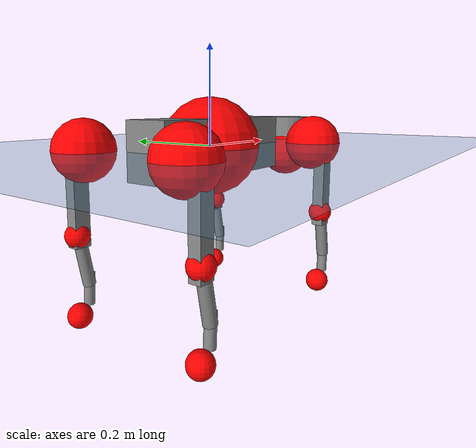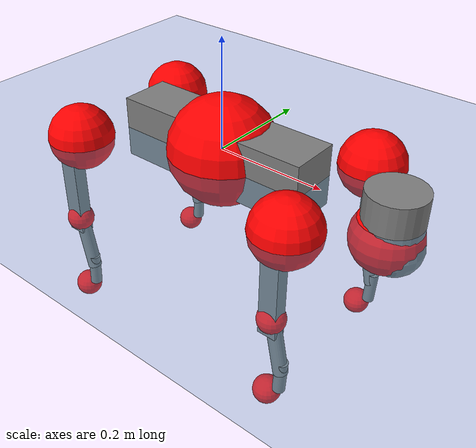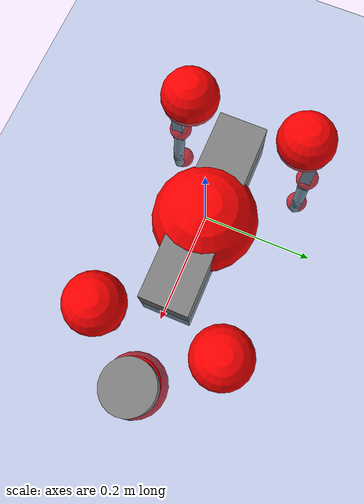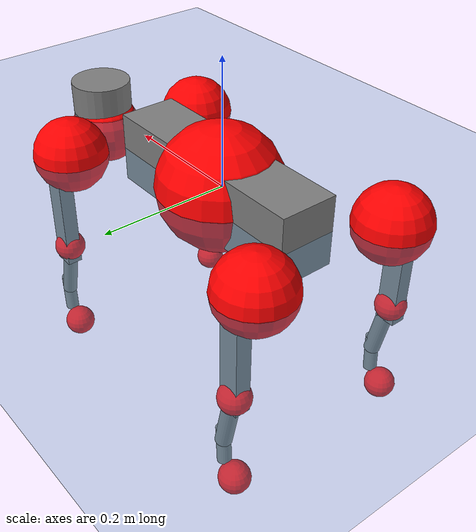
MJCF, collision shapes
<mujoco model="go2">
  <compiler angle="radian" assetdir="assets" balanceinertia="true" inertiafromgeom="false"/>

  <option timestep="0.005" density="1.2" viscosity="2e-05"/>

  <size nkey="1"/>

  <visual>
    <quality shadowsize="8192"/>
    <map shadowclip="0.5"/>
  </visual>

  <default>
    <default class="/">
      <geom contype="0" conaffinity="0" group="1" solref="-1000 -80"/>
      <site size="0.01 0.005 0.005" group="5"/>
      <general forcelimited="true" biastype="affine" gainprm="20" biasprm="0 -20 -0.5"/>
      <default class="go2">
        <joint armature="0.01" damping="0.01" frictionloss="0.2"/>
        <geom condim="1" margin="0.001"/>
        <default class="visual">
          <geom type="mesh" group="2"/>
        </default>
        <default class="collision">
          <geom group="3"/>
          <default class="foot">
            <geom size="0.022 0 0" condim="6" priority="1" friction="0.8 0.02 0.01" solimp="0.015 1 0.022"/>
          </default>
        </default>
        <default class="reward_collision_sphere">
          <geom group="5" rgba="1 0 0 1"/>
        </default>
      </default>
    </default>
  </default>

  <asset>
    <texture type="skybox" colorspace="auto" name="//unnamed_texture_0" builtin="gradient" rgb1="0.95 0.95 0.95" rgb2="0.95 0.95 0.95" width="100" height="600"/>
    <texture type="2d" colorspace="auto" name="texplane" builtin="checker" rgb1="0.345 0.575 0.748" rgb2="0.345 0.575 0.748" markrgb="1 1 1" width="512" height="512"/>
    <material name="MatPlane" class="/" texture="texplane" texuniform="true" texrepeat="2 2" specular="0.9"/>
    <material name="metal" class="/" rgba="0.9 0.95 0.95 1"/>
    <material name="black" class="/" rgba="0 0 0 1"/>
    <material name="white" class="/"/>
    <material name="gray" class="/" rgba="0.671705 0.692426 0.77427 1"/>
    <mesh name="base_0" class="/" file="base_0.obj"/>
    <mesh name="base_1" class="/" file="base_1.obj"/>
    <mesh name="base_2" class="/" file="base_2.obj"/>
    <mesh name="base_3" class="/" file="base_3.obj"/>
    <mesh name="base_4" class="/" file="base_4.obj"/>
    <mesh name="hip_0" class="/" file="hip_0.obj"/>
    <mesh name="hip_1" class="/" file="hip_1.obj"/>
    <mesh name="thigh_0" class="/" file="thigh_0.obj"/>
    <mesh name="thigh_1" class="/" file="thigh_1.obj"/>
    <mesh name="thigh_mirror_0" class="/" file="thigh_mirror_0.obj"/>
    <mesh name="thigh_mirror_1" class="/" file="thigh_mirror_1.obj"/>
    <mesh name="calf_0" class="/" file="calf_0.obj"/>
    <mesh name="calf_1" class="/" file="calf_1.obj"/>
    <mesh name="calf_mirror_0" class="/" file="calf_mirror_0.obj"/>
    <mesh name="calf_mirror_1" class="/" file="calf_mirror_1.obj"/>
    <mesh name="foot" class="/" file="foot.obj"/>
  </asset>

  <worldbody>
    <geom name="floor" class="/" size="100 100 0.125" type="plane" group="0" material="MatPlane"/>
    <light name="toplight_shadow" class="/" pos="0 0 5" dir="0.0990148 0.0990148 -0.990148" type="directional" ambient="0.04 0.04 0.04" diffuse="0.55 0.55 0.55" specular="0.12 0.12 0.12"/>
    <light name="toplight_fill" class="/" pos="0 0 5" dir="0.0990148 0.0990148 -0.990148" type="directional" castshadow="false" ambient="0.04 0.04 0.04" diffuse="0.3 0.3 0.3" specular="0.08 0.08 0.08"/>
    <body name="trunk" childclass="go2" pos="0.00270293 0.000789779 0.000471958" quat="1 0.000149566 -0.000271799 4.19102e-05">
      <inertial pos="0.0242531 0.000294457 -0.00401061" quat="-0.0052835 0.716862 0.00501696 0.697177" mass="6.53542" diaginertia="0.215153 0.132704 0.00587327"/>
      <joint name="//unnamed_joint_0" type="free" armature="0" damping="0" frictionloss="0"/>
      <geom name="//unnamed_geom_1" class="visual" material="black" mesh="base_0"/>
      <geom name="//unnamed_geom_2" class="visual" material="black" mesh="base_1"/>
      <geom name="//unnamed_geom_3" class="visual" material="black" mesh="base_2"/>
      <geom name="//unnamed_geom_4" class="visual" material="white" mesh="base_3"/>
      <geom name="//unnamed_geom_5" class="visual" material="gray" mesh="base_4"/>
      <geom name="trunk_1" class="collision" size="0.184108 0.045758 0.0557905" type="box"/>
      <geom name="trunk_2" class="collision" size="0.048939 0.0440451" pos="0.323286 0 0.00752134" type="cylinder"/>
      <geom name="trunk_3" class="collision" size="0.0460027" pos="0.332361 0 -0.0451281"/>
      <geom name="//unnamed_geom_9" class="reward_collision_sphere" size="0.097878"/>
      <geom name="//unnamed_geom_10" class="reward_collision_sphere" size="0.0587268" pos="0.317615 0 -0.033846"/>
      <site name="imu" pos="-0.0307144 0.0052701 0.0201817" size="0.0097878"/>
      <camera name="track" pos="0 -2.09973 0" quat="0.707107 0.707107 0 0" mode="trackcom"/>
      <camera name="ego_camera" pos="0.353913 0 0.033846" quat="-0.5 -0.5 0.5 0.5"/>
      <body name="FL_hip" pos="0.218611 0.0491257 -0.00158178" quat="0.999999 0.00119441 0.000289634 0.00016232">
        <inertial pos="-0.00866766 0.00138873 -0.000729159" quat="0.496761 0.499057 0.505637 0.4985" mass="0.640496" diaginertia="0.00167383 0.000732342 0.000116644"/>
        <joint name="FL_hip_joint" pos="0 0 0" axis="0.999969 -0.00328283 -0.00720046" range="-1.03946 1.04951" armature="0.00867013" damping="0.00829538" frictionloss="0.211701"/>
        <geom name="//unnamed_geom_11" class="visual" material="metal" mesh="hip_0"/>
        <geom name="//unnamed_geom_12" class="visual" material="gray" mesh="hip_1"/>
        <geom name="//unnamed_geom_13" class="collision" size="0.0450239 0.0195756" pos="0 0.0839894 0" quat="0.707107 0.707107 0 0" type="cylinder"/>
        <geom name="//unnamed_geom_14" class="reward_collision_sphere" size="0.0587268" pos="0 0.0734907 0"/>
        <body name="FL_thigh" pos="-0.00305722 0.0996292 -0.00118535" quat="1 0.000714285 0.000400244 -0.000263388">
          <inertial pos="-0.00387698 -0.0235456 -0.0266642" quat="0.826842 0.0876061 -0.0252613 0.554995" mass="1.07522" diaginertia="0.0111851 0.00741975 0.000209603"/>
          <joint name="FL_thigh_joint" pos="0 0 0" axis="0.01807 0.999837 -0.000201502" range="-1.54952 3.49107" armature="0.0112859" damping="0" frictionloss="0.174697"/>
          <geom name="//unnamed_geom_15" class="visual" material="metal" mesh="thigh_0"/>
          <geom name="//unnamed_geom_16" class="visual" material="gray" mesh="thigh_1"/>
          <geom name="//unnamed_geom_17" class="collision" size="0.10424 0.0119901 0.0166393" pos="0 0 -0.0801023" quat="0.707107 0 0.707107 0" type="box"/>
          <body name="FL_calf" pos="-0.000683272 -0.00233332 -0.159344" quat="0.999999 0.00115778 -0.000524246 0.000439586">
            <inertial pos="0.00885595 0.000279325 -0.105725" quat="0.703031 -0.00178104 -0.0100752 0.711086" mass="0.239553" diaginertia="0.00277881 0.00192138 1.26977e-05"/>
            <joint name="FL_calf_joint" pos="0 0 0" axis="0.000417534 0.999997 0.00244703" stiffness="0.00172894" range="-2.73037 -0.817952" armature="0.0100836" damping="0" frictionloss="0.188077"/>
            <geom name="//unnamed_geom_18" class="visual" material="gray" mesh="calf_0"/>
            <geom name="//unnamed_geom_19" class="visual" material="black" mesh="calf_1"/>
            <geom name="FL_calf0" class="collision" size="0.0117454 0.0587268" pos="0.0090747 0 -0.0451281" quat="0.994493 0 -0.104807 0" type="cylinder"/>
            <geom name="//unnamed_geom_21" class="collision" size="0.0107666 0.0318103" pos="0.0226868 0 -0.111316" quat="0.999688 0 0.0249974 0" type="cylinder"/>
            <geom name="//unnamed_geom_22" class="visual" pos="0 0 -0.160205" quat="1 0 0 0" material="black" mesh="foot"/>
            <geom name="FL_foot" class="foot" size="0.021008" pos="-0.00226868 0 -0.160205"/>
            <geom name="//unnamed_geom_24" class="reward_collision_sphere" size="0.0244695"/>
            <geom name="//unnamed_geom_25" class="reward_collision_sphere" size="0.0244695" pos="-0.00226868 0 -0.160205"/>
            <site name="FL_foot" class="foot" pos="-0.00226868 0 -0.160205" size="0.0097878"/>
          </body>
        </body>
      </body>
      <body name="FR_hip" pos="0.217516 -0.0466149 -0.00190241" quat="1 -0.000142435 -6.63133e-05 -0.000338819">
        <inertial pos="-0.0038754 -0.00210577 -0.00207648" quat="0.501309 0.497471 0.496577 0.504602" mass="0.646203" diaginertia="0.00171551 0.000758315 0.000118888"/>
        <joint name="FR_hip_joint" pos="0 0 0" axis="0.999917 0.0123432 0.0037049" range="-1.10027 1.03081" armature="0.00961925" damping="0.018751" frictionloss="0.168279"/>
        <geom name="//unnamed_geom_26" class="visual" pos="0 2.59373e-09 1.1125e-07" quat="4.63268e-05 1 0 0" material="metal" mesh="hip_0"/>
        <geom name="//unnamed_geom_27" class="visual" pos="0 4.20475e-09 -2.75165e-07" quat="4.63268e-05 1 0 0" material="gray" mesh="hip_1"/>
        <geom name="//unnamed_geom_28" class="collision" size="0.0450239 0.0195756" pos="0 -0.0839894 0" quat="0.707107 0.707107 0 0" type="cylinder"/>
        <geom name="//unnamed_geom_29" class="reward_collision_sphere" size="0.0587268" pos="0 -0.0734907 0"/>
        <body name="FR_thigh" pos="3.17864e-05 -0.0987125 0.00298173" quat="1 6.81755e-05 1.76253e-05 -4.5696e-06">
          <inertial pos="-0.0056398 0.0253049 -0.0247033" quat="0.551457 -0.019126 0.0854787 0.829592" mass="1.08214" diaginertia="0.0112938 0.00737199 0.000212372"/>
          <joint name="FR_thigh_joint" pos="0 0 0" axis="-0.00918341 -0.999926 0.00795723" stiffness="0.00168129" range="-3.4722 1.60292" armature="0.00994129" damping="0.00510663" frictionloss="0.186579"/>
          <geom name="//unnamed_geom_30" class="visual" material="metal" mesh="thigh_mirror_0"/>
          <geom name="//unnamed_geom_31" class="visual" material="gray" mesh="thigh_mirror_1"/>
          <geom name="//unnamed_geom_32" class="collision" size="0.10424 0.0119901 0.0166393" pos="0 0 -0.0801023" quat="0.707107 0 0.707107 0" type="box"/>
          <body name="FR_calf" pos="-0.000258984 0.000954588 -0.156989" quat="0.999999 0.000578339 -0.00087312 -0.00023935">
            <inertial pos="0.00881554 -0.00169108 -0.103766" quat="0.701507 -0.00691643 -0.00196028 0.712626" mass="0.221299" diaginertia="0.00289872 0.00195747 1.33182e-05"/>
            <joint name="FR_calf_joint" pos="0 0 0" axis="0.0118826 -0.999922 -0.00374512" stiffness="0.0101444" range="0.788064 2.7267" armature="0.00924801" damping="0.0212375" frictionloss="0.22275"/>
            <geom name="//unnamed_geom_33" class="visual" material="gray" mesh="calf_mirror_0"/>
            <geom name="//unnamed_geom_34" class="visual" material="black" mesh="calf_mirror_1"/>
            <geom name="FR_calf0" class="collision" size="0.0127241 0.0587268" pos="0.0113434 0 -0.0451281" quat="0.995004 0 -0.0998334 0" type="cylinder"/>
            <geom name="//unnamed_geom_36" class="collision" size="0.0107666 0.0318103" pos="0.0226868 0 -0.111316" quat="0.999688 0 0.0249974 0" type="cylinder"/>
            <geom name="//unnamed_geom_37" class="visual" pos="0 0 -0.160205" quat="1 0 0 0" material="black" mesh="foot"/>
            <geom name="FR_foot" class="foot" size="0.0210901" pos="-0.00226868 0 -0.160205"/>
            <geom name="//unnamed_geom_39" class="reward_collision_sphere" size="0.0244695"/>
            <geom name="//unnamed_geom_40" class="reward_collision_sphere" size="0.0244695" pos="-0.00226868 0 -0.160205"/>
            <site name="FR_foot" class="foot" pos="-0.00226868 0 -0.160205" size="0.0097878"/>
          </body>
        </body>
      </body>
      <body name="RL_hip" pos="-0.218067 0.045917 -4.21862e-05" quat="1 0.000396872 0.000138065 0.000197877">
        <inertial pos="0.00858521 0.000202112 0.000347672" quat="0.505405 0.491398 0.492545 0.510385" mass="0.622641" diaginertia="0.00166738 0.000757202 0.000111412"/>
        <joint name="RL_hip_joint" pos="0 0 0" axis="-0.999966 -0.00376814 0.00735778" stiffness="0.000332689" range="-0.995112 1.05672" armature="0.00984748" damping="0.017906" frictionloss="0.192308"/>
        <geom name="//unnamed_geom_41" class="visual" pos="-3.3296e-09 0 -6.52678e-07" quat="4.63268e-05 0 1 0" material="metal" mesh="hip_0"/>
        <geom name="//unnamed_geom_42" class="visual" pos="-5.39768e-09 0 -5.78833e-07" quat="4.63268e-05 0 1 0" material="gray" mesh="hip_1"/>
        <geom name="//unnamed_geom_43" class="collision" size="0.0450239 0.0195756" pos="0 0.0839894 0" quat="0.707107 0.707107 0 0" type="cylinder"/>
        <geom name="//unnamed_geom_44" class="reward_collision_sphere" size="0.0587268" pos="0 0.0734907 0"/>
        <body name="RL_thigh" pos="0.00223359 0.10116 -0.000932649" quat="1 0.000173311 0.000171113 0.000270518">
          <inertial pos="-0.00494755 -0.0210153 -0.0247427" quat="0.824229 0.0961081 -0.0186269 0.55773" mass="1.10511" diaginertia="0.0111787 0.007677 0.000213212"/>
          <joint name="RL_thigh_joint" pos="0 0 0" axis="0.00784512 0.999948 0.00657471" range="-0.47122 4.58555" armature="0.0110348" damping="0.00370644" frictionloss="0.223204"/>
          <geom name="//unnamed_geom_45" class="visual" material="metal" mesh="thigh_0"/>
          <geom name="//unnamed_geom_46" class="visual" material="gray" mesh="thigh_1"/>
          <geom name="//unnamed_geom_47" class="collision" size="0.10424 0.0119901 0.0166393" pos="0 0 -0.0801023" quat="0.707107 0 0.707107 0" type="box"/>
          <body name="RL_calf" pos="-0.00256207 0.00240562 -0.162669" quat="1 -0.000255611 0.00084305 -0.000331264">
            <inertial pos="0.00646009 -0.000378319 -0.104664" quat="0.714806 0.00780906 0.000350943 0.699279" mass="0.219581" diaginertia="0.0027921 0.00184112 1.28985e-05"/>
            <joint name="RL_calf_joint" pos="0 0 0" axis="0.0164013 0.999824 0.00912365" range="-2.73676 -0.885319" armature="0.00943142" damping="0.00659158" frictionloss="0.168379"/>
            <geom name="//unnamed_geom_48" class="visual" material="gray" mesh="calf_0"/>
            <geom name="//unnamed_geom_49" class="visual" material="black" mesh="calf_1"/>
            <geom name="RL_calf0" class="collision" size="0.0127241 0.0587268" pos="0.0113434 0 -0.0451281" quat="0.995004 0 -0.0998334 0" type="cylinder"/>
            <geom name="//unnamed_geom_51" class="collision" size="0.0107666 0.0318103" pos="0.0226868 0 -0.111316" quat="0.999688 0 0.0249974 0" type="cylinder"/>
            <geom name="//unnamed_geom_52" class="visual" pos="0 0 -0.160205" quat="1 0 0 0" material="black" mesh="foot"/>
            <geom name="RL_foot" class="foot" size="0.017207" pos="-0.00226868 0 -0.160205"/>
            <geom name="//unnamed_geom_54" class="reward_collision_sphere" size="0.0244695"/>
            <geom name="//unnamed_geom_55" class="reward_collision_sphere" size="0.0244695" pos="-0.00226868 0 -0.160205"/>
            <site name="RL_foot" class="foot" pos="-0.00226868 0 -0.160205" size="0.0097878"/>
          </body>
        </body>
      </body>
      <body name="RR_hip" pos="-0.221185 -0.0498006 -0.000782517" quat="1 -1.75859e-05 -0.000177698 0.000140338">
        <inertial pos="0.00878487 -0.000186447 0.00060858" quat="0.491989 0.494967 0.507479 0.505391" mass="0.645378" diaginertia="0.0017268 0.00079408 0.000120502"/>
        <joint name="RR_hip_joint" pos="0 0 0" axis="-0.999938 -0.0104477 -0.00378737" range="-1.04833 1.04883" armature="0.00954264" damping="0.0123975" frictionloss="0.200816"/>
        <geom name="//unnamed_geom_56" class="visual" pos="3.32668e-09 2.59373e-09 -7.63929e-07" quat="2.14617e-09 4.63268e-05 4.63268e-05 -1" material="metal" mesh="hip_0"/>
        <geom name="//unnamed_geom_57" class="visual" pos="5.40491e-09 4.20475e-09 -3.03668e-07" quat="2.14617e-09 4.63268e-05 4.63268e-05 -1" material="gray" mesh="hip_1"/>
        <geom name="//unnamed_geom_58" class="collision" size="0.0450239 0.0195756" pos="0 -0.0839894 0" quat="0.707107 0.707107 0 0" type="cylinder"/>
        <geom name="//unnamed_geom_59" class="reward_collision_sphere" size="0.0587268" pos="0 -0.0734907 0"/>
        <body name="RR_thigh" pos="0.000375808 -0.100817 0.00141214" quat="1 -1.96037e-06 0.000482188 0.000352675">
          <inertial pos="-0.00479384 0.0239139 -0.024726" quat="0.54492 -0.014919 0.0830024 0.834236" mass="1.09536" diaginertia="0.0112315 0.00776223 0.000217962"/>
          <joint name="RR_thigh_joint" pos="0 0 0" axis="0.00798705 -0.999939 0.00766087" range="-4.53427 0.533927" armature="0.0110222" damping="0.00132057" frictionloss="0.17917"/>
          <geom name="//unnamed_geom_60" class="visual" material="metal" mesh="thigh_mirror_0"/>
          <geom name="//unnamed_geom_61" class="visual" material="gray" mesh="thigh_mirror_1"/>
          <geom name="//unnamed_geom_62" class="collision" size="0.10424 0.0119901 0.0166393" pos="0 0 -0.0801023" quat="0.707107 0 0.707107 0" type="box"/>
          <body name="RR_calf" pos="0.000619143 0.000721576 -0.159902" quat="1 6.63211e-05 -0.000203025 5.26644e-05">
            <inertial pos="0.00431449 -0.00149654 -0.104084" quat="0.702953 -0.00541835 0.00216807 0.711212" mass="0.236605" diaginertia="0.00273579 0.00195101 1.28671e-05"/>
            <joint name="RR_calf_joint" pos="0 0 0" axis="0.000129787 -1 0.000150006" range="0.827329 2.77349" armature="0.00979995" damping="0.0110558" frictionloss="0.219173"/>
            <geom name="//unnamed_geom_63" class="visual" material="gray" mesh="calf_mirror_0"/>
            <geom name="//unnamed_geom_64" class="visual" material="black" mesh="calf_mirror_1"/>
            <geom name="RR_calf0" class="collision" size="0.0127241 0.0587268" pos="0.0113434 0 -0.0451281" quat="0.995004 0 -0.0998334 0" type="cylinder"/>
            <geom name="//unnamed_geom_66" class="collision" size="0.0107666 0.0318103" pos="0.0226868 0 -0.111316" quat="0.999688 0 0.0249974 0" type="cylinder"/>
            <geom name="//unnamed_geom_67" class="visual" pos="0 0 -0.160205" quat="1 0 0 0" material="black" mesh="foot"/>
            <geom name="RR_foot" class="foot" size="0.0229206" pos="-0.00226868 0 -0.160205"/>
            <geom name="//unnamed_geom_69" class="reward_collision_sphere" size="0.0244695"/>
            <geom name="//unnamed_geom_70" class="reward_collision_sphere" size="0.0244695" pos="-0.00226868 0 -0.160205"/>
            <site name="RR_foot" class="foot" pos="-0.00226868 0 -0.160205" size="0.0097878"/>
          </body>
        </body>
      </body>
    </body>
  </worldbody>

  <contact>
    <pair class="/" geom1="floor" geom2="FL_foot" name="//unnamed_contact_0"/>
    <pair class="/" geom1="floor" geom2="FR_foot" name="//unnamed_contact_1"/>
    <pair class="/" geom1="floor" geom2="RL_foot" name="//unnamed_contact_2"/>
    <pair class="/" geom1="floor" geom2="RR_foot" name="//unnamed_contact_3"/>
  </contact>

  <actuator>
    <general name="FL_hip" class="/" joint="FL_hip_joint" forcerange="-23.3019 23.3019" gainprm="19.5472" biasprm="0 -19.5472 -0.487041"/>
    <general name="FL_thigh" class="/" joint="FL_thigh_joint" forcerange="-20.7937 20.7937" gainprm="19.5472" biasprm="0 -19.5472 -0.487041"/>
    <general name="FL_calf" class="/" joint="FL_calf_joint" forcerange="-47.0336 47.0336" gainprm="19.5472" biasprm="0 -19.5472 -0.487041"/>
    <general name="FR_hip" class="/" joint="FR_hip_joint" forcerange="-23.2931 23.2931" gainprm="19.5472" biasprm="0 -19.5472 -0.487041"/>
    <general name="FR_thigh" class="/" joint="FR_thigh_joint" forcerange="-22.3774 22.3774" gainprm="19.5472" biasprm="0 -19.5472 -0.487041"/>
    <general name="FR_calf" class="/" joint="FR_calf_joint" forcerange="-48.3414 48.3414" gainprm="19.5472" biasprm="0 -19.5472 -0.487041"/>
    <general name="RL_hip" class="/" joint="RL_hip_joint" forcerange="-23.2739 23.2739" gainprm="19.5472" biasprm="0 -19.5472 -0.487041"/>
    <general name="RL_thigh" class="/" joint="RL_thigh_joint" forcerange="-25.3537 25.3537" gainprm="19.5472" biasprm="0 -19.5472 -0.487041"/>
    <general name="RL_calf" class="/" joint="RL_calf_joint" forcerange="-41.6059 41.6059" gainprm="19.5472" biasprm="0 -19.5472 -0.487041"/>
    <general name="RR_hip" class="/" joint="RR_hip_joint" forcerange="-23.4106 23.4106" gainprm="19.5472" biasprm="0 -19.5472 -0.487041"/>
    <general name="RR_thigh" class="/" joint="RR_thigh_joint" forcerange="-23.1084 23.1084" gainprm="19.5472" biasprm="0 -19.5472 -0.487041"/>
    <general name="RR_calf" class="/" joint="RR_calf_joint" forcerange="-41.2992 41.2992" gainprm="19.5472" biasprm="0 -19.5472 -0.487041"/>
  </actuator>

  <sensor>
    <gyro site="imu" name="imu_angular_velocity"/>
    <velocimeter site="imu" name="imu_linear_velocity"/>
    <framelinvel objtype="site" objname="FL_foot" name="FL_foot_global_linear_velocity"/>
    <framelinvel objtype="site" objname="FR_foot" name="FR_foot_global_linear_velocity"/>
    <framelinvel objtype="site" objname="RL_foot" name="RL_foot_global_linear_velocity"/>
    <framelinvel objtype="site" objname="RR_foot" name="RR_foot_global_linear_velocity"/>
  </sensor>

  <keyframe>
    <key name="home" qpos="0 0 0.325 1 0 0 0 0.1 0.8 -1.5 -0.1 -0.8 1.5 -0.1 0.8 -1.5 0.1 -0.8 1.5"/>
  </keyframe>
</mujoco>
